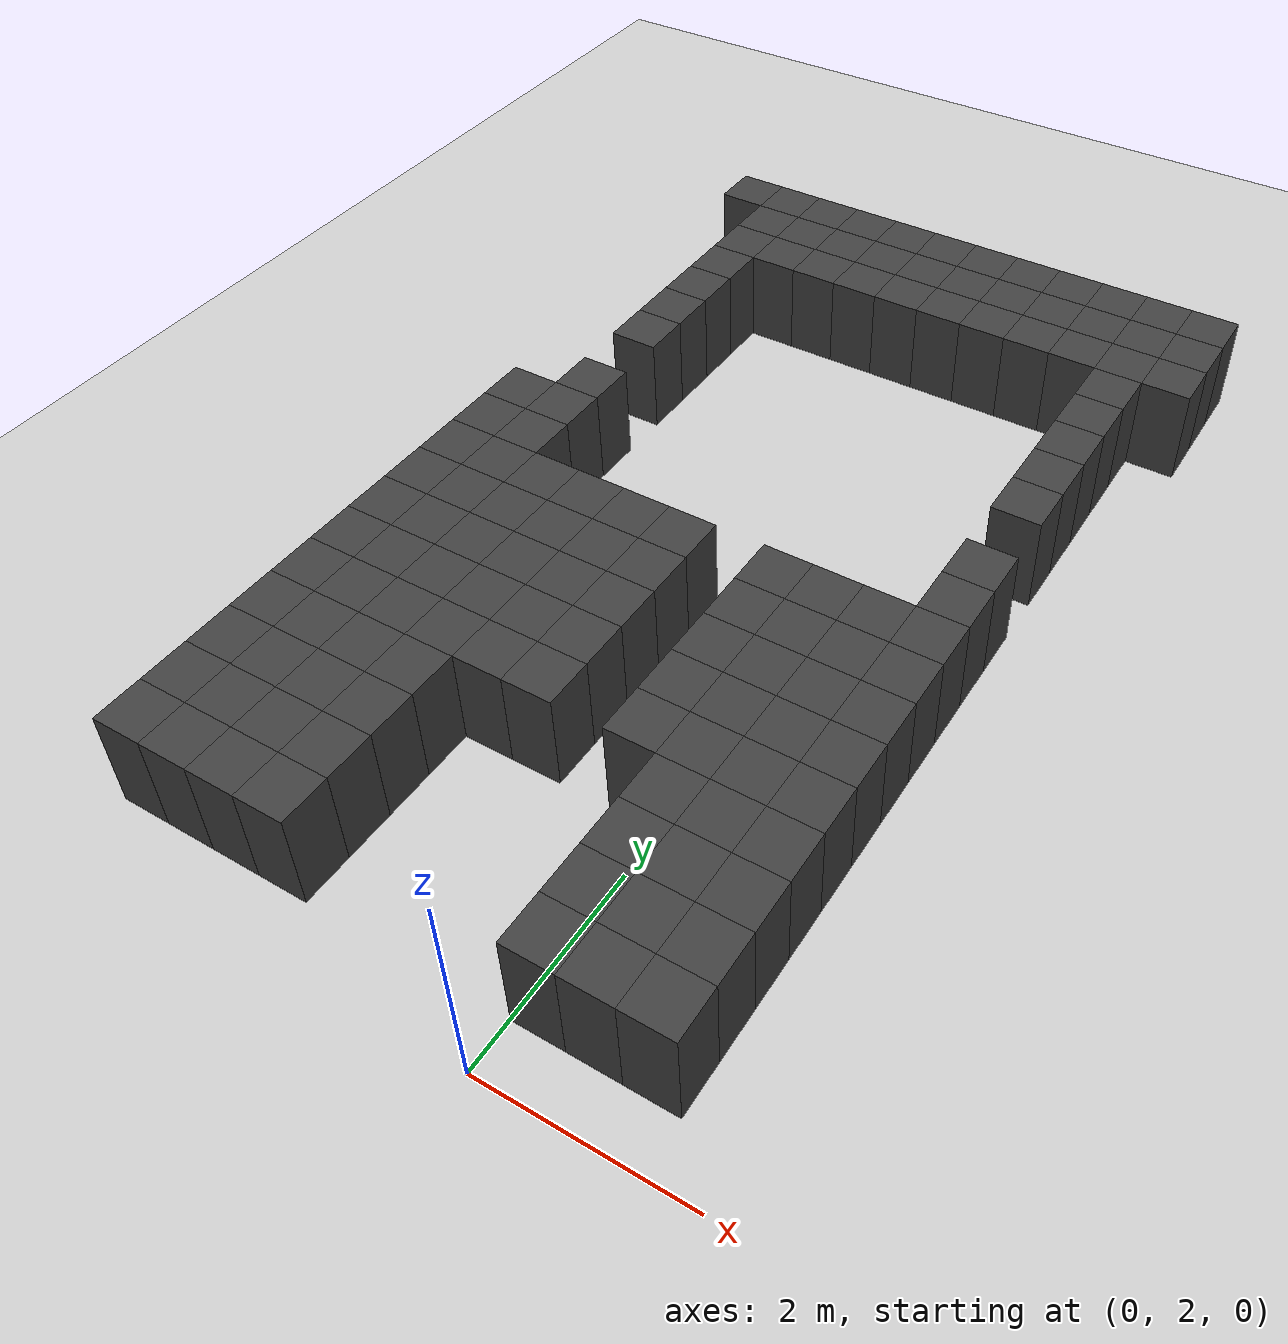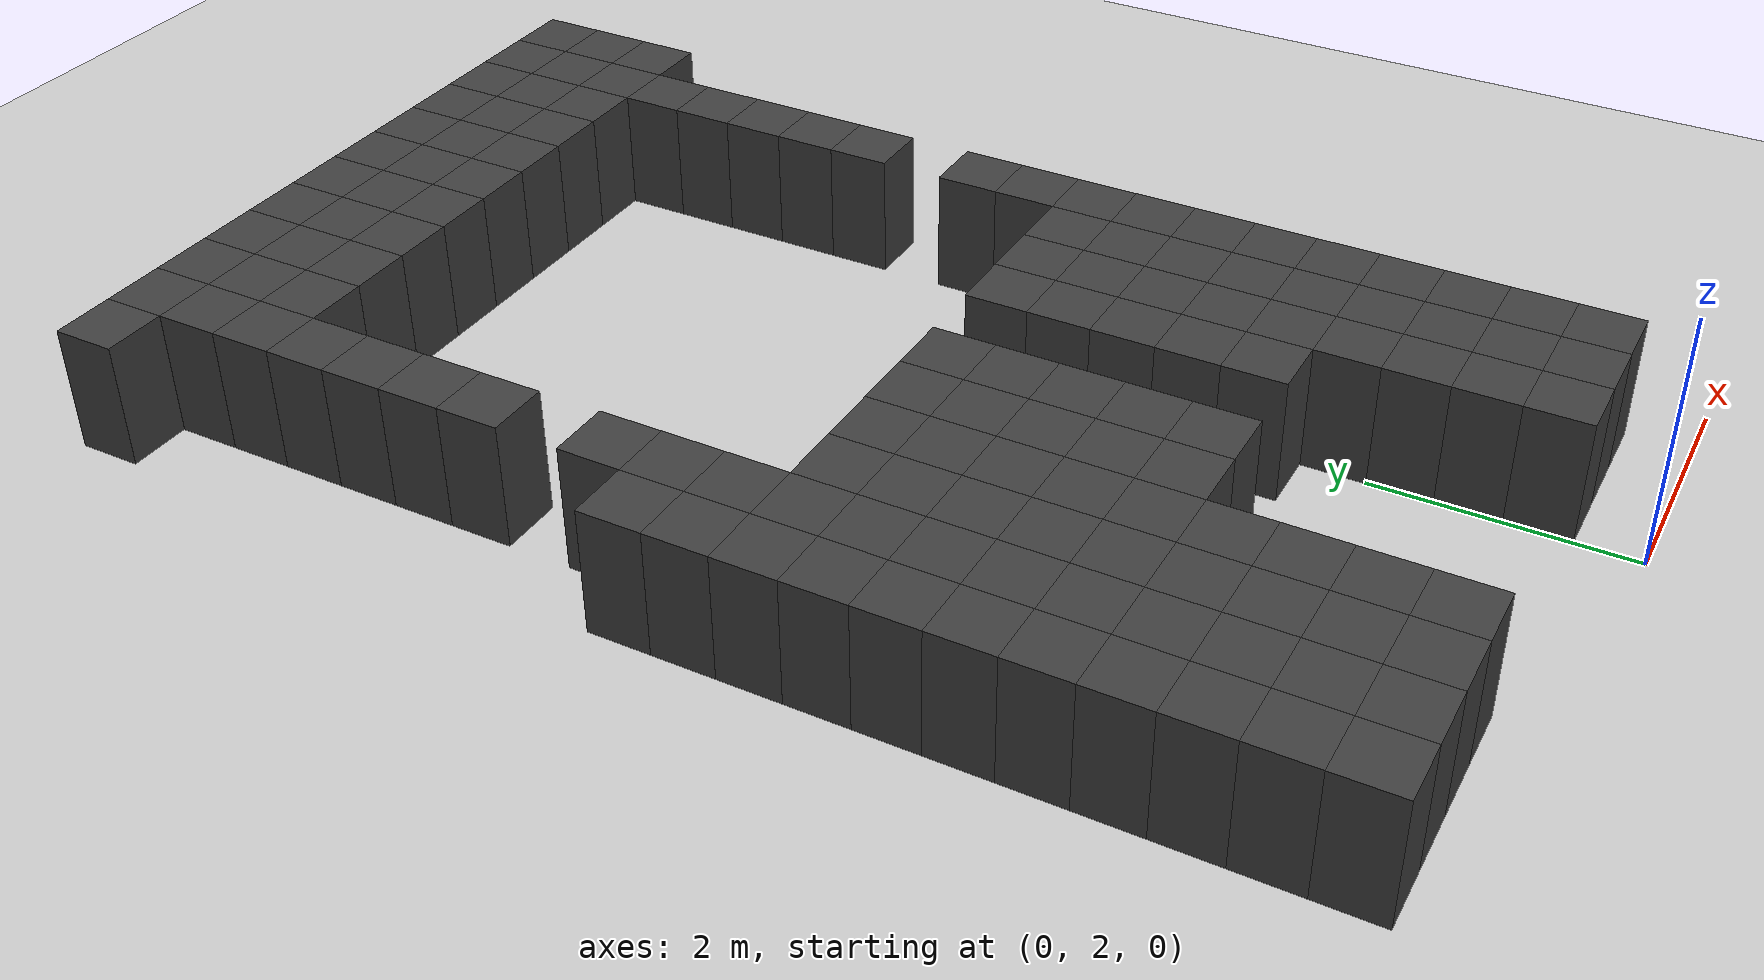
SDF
<sdf version="1.7">
 <world name="map_14735">
  <model name="ground_plane">
   <static>true</static>
   <link name="link">
    <collision name="collision">
     <geometry><plane><normal>0 0 1</normal><size>200 200</size></plane></geometry>
    </collision>
    <visual name="visual">
     <geometry><plane><normal>0 0 1</normal><size>200 200</size></plane></geometry>
     <material><ambient>0.8 0.8 0.8 1</ambient><diffuse>0.8 0.8 0.8 1</diffuse></material>
    </visual>
   </link>
  </model>
  <model name="maze_environment">
   <static>true</static>
   <link name="wall_17">
    <pose>-3.750 12.250 0.500 0 0 0</pose>
    <collision name="col"><geometry><box><size>0.5 0.5 1.0</size></box></geometry></collision>
    <visual name="vis">
     <geometry><box><size>0.5 0.5 1.0</size></box></geometry>
     <material><ambient>0.15 0.15 0.15 1</ambient><diffuse>0.25 0.25 0.25 1</diffuse></material>
    </visual>
   </link>
   <link name="wall_18">
    <pose>-3.250 12.250 0.500 0 0 0</pose>
    <collision name="col"><geometry><box><size>0.5 0.5 1.0</size></box></geometry></collision>
    <visual name="vis">
     <geometry><box><size>0.5 0.5 1.0</size></box></geometry>
     <material><ambient>0.15 0.15 0.15 1</ambient><diffuse>0.25 0.25 0.25 1</diffuse></material>
    </visual>
   </link>
   <link name="wall_19">
    <pose>-2.750 12.250 0.500 0 0 0</pose>
    <collision name="col"><geometry><box><size>0.5 0.5 1.0</size></box></geometry></collision>
    <visual name="vis">
     <geometry><box><size>0.5 0.5 1.0</size></box></geometry>
     <material><ambient>0.15 0.15 0.15 1</ambient><diffuse>0.25 0.25 0.25 1</diffuse></material>
    </visual>
   </link>
   <link name="wall_20">
    <pose>-2.250 12.250 0.500 0 0 0</pose>
    <collision name="col"><geometry><box><size>0.5 0.5 1.0</size></box></geometry></collision>
    <visual name="vis">
     <geometry><box><size>0.5 0.5 1.0</size></box></geometry>
     <material><ambient>0.15 0.15 0.15 1</ambient><diffuse>0.25 0.25 0.25 1</diffuse></material>
    </visual>
   </link>
   <link name="wall_21">
    <pose>-1.750 12.250 0.500 0 0 0</pose>
    <collision name="col"><geometry><box><size>0.5 0.5 1.0</size></box></geometry></collision>
    <visual name="vis">
     <geometry><box><size>0.5 0.5 1.0</size></box></geometry>
     <material><ambient>0.15 0.15 0.15 1</ambient><diffuse>0.25 0.25 0.25 1</diffuse></material>
    </visual>
   </link>
   <link name="wall_22">
    <pose>-1.250 12.250 0.500 0 0 0</pose>
    <collision name="col"><geometry><box><size>0.5 0.5 1.0</size></box></geometry></collision>
    <visual name="vis">
     <geometry><box><size>0.5 0.5 1.0</size></box></geometry>
     <material><ambient>0.15 0.15 0.15 1</ambient><diffuse>0.25 0.25 0.25 1</diffuse></material>
    </visual>
   </link>
   <link name="wall_23">
    <pose>-0.750 12.250 0.500 0 0 0</pose>
    <collision name="col"><geometry><box><size>0.5 0.5 1.0</size></box></geometry></collision>
    <visual name="vis">
     <geometry><box><size>0.5 0.5 1.0</size></box></geometry>
     <material><ambient>0.15 0.15 0.15 1</ambient><diffuse>0.25 0.25 0.25 1</diffuse></material>
    </visual>
   </link>
   <link name="wall_24">
    <pose>-0.250 12.250 0.500 0 0 0</pose>
    <collision name="col"><geometry><box><size>0.5 0.5 1.0</size></box></geometry></collision>
    <visual name="vis">
     <geometry><box><size>0.5 0.5 1.0</size></box></geometry>
     <material><ambient>0.15 0.15 0.15 1</ambient><diffuse>0.25 0.25 0.25 1</diffuse></material>
    </visual>
   </link>
   <link name="wall_25">
    <pose>0.250 12.250 0.500 0 0 0</pose>
    <collision name="col"><geometry><box><size>0.5 0.5 1.0</size></box></geometry></collision>
    <visual name="vis">
     <geometry><box><size>0.5 0.5 1.0</size></box></geometry>
     <material><ambient>0.15 0.15 0.15 1</ambient><diffuse>0.25 0.25 0.25 1</diffuse></material>
    </visual>
   </link>
   <link name="wall_26">
    <pose>0.750 12.250 0.500 0 0 0</pose>
    <collision name="col"><geometry><box><size>0.5 0.5 1.0</size></box></geometry></collision>
    <visual name="vis">
     <geometry><box><size>0.5 0.5 1.0</size></box></geometry>
     <material><ambient>0.15 0.15 0.15 1</ambient><diffuse>0.25 0.25 0.25 1</diffuse></material>
    </visual>
   </link>
   <link name="wall_27">
    <pose>1.250 12.250 0.500 0 0 0</pose>
    <collision name="col"><geometry><box><size>0.5 0.5 1.0</size></box></geometry></collision>
    <visual name="vis">
     <geometry><box><size>0.5 0.5 1.0</size></box></geometry>
     <material><ambient>0.15 0.15 0.15 1</ambient><diffuse>0.25 0.25 0.25 1</diffuse></material>
    </visual>
   </link>
   <link name="wall_28">
    <pose>1.750 12.250 0.500 0 0 0</pose>
    <collision name="col"><geometry><box><size>0.5 0.5 1.0</size></box></geometry></collision>
    <visual name="vis">
     <geometry><box><size>0.5 0.5 1.0</size></box></geometry>
     <material><ambient>0.15 0.15 0.15 1</ambient><diffuse>0.25 0.25 0.25 1</diffuse></material>
    </visual>
   </link>
   <link name="wall_60">
    <pose>-3.250 11.750 0.500 0 0 0</pose>
    <collision name="col"><geometry><box><size>0.5 0.5 1.0</size></box></geometry></collision>
    <visual name="vis">
     <geometry><box><size>0.5 0.5 1.0</size></box></geometry>
     <material><ambient>0.15 0.15 0.15 1</ambient><diffuse>0.25 0.25 0.25 1</diffuse></material>
    </visual>
   </link>
   <link name="wall_61">
    <pose>-2.750 11.750 0.500 0 0 0</pose>
    <collision name="col"><geometry><box><size>0.5 0.5 1.0</size></box></geometry></collision>
    <visual name="vis">
     <geometry><box><size>0.5 0.5 1.0</size></box></geometry>
     <material><ambient>0.15 0.15 0.15 1</ambient><diffuse>0.25 0.25 0.25 1</diffuse></material>
    </visual>
   </link>
   <link name="wall_62">
    <pose>-2.250 11.750 0.500 0 0 0</pose>
    <collision name="col"><geometry><box><size>0.5 0.5 1.0</size></box></geometry></collision>
    <visual name="vis">
     <geometry><box><size>0.5 0.5 1.0</size></box></geometry>
     <material><ambient>0.15 0.15 0.15 1</ambient><diffuse>0.25 0.25 0.25 1</diffuse></material>
    </visual>
   </link>
   <link name="wall_63">
    <pose>-1.750 11.750 0.500 0 0 0</pose>
    <collision name="col"><geometry><box><size>0.5 0.5 1.0</size></box></geometry></collision>
    <visual name="vis">
     <geometry><box><size>0.5 0.5 1.0</size></box></geometry>
     <material><ambient>0.15 0.15 0.15 1</ambient><diffuse>0.25 0.25 0.25 1</diffuse></material>
    </visual>
   </link>
   <link name="wall_64">
    <pose>-1.250 11.750 0.500 0 0 0</pose>
    <collision name="col"><geometry><box><size>0.5 0.5 1.0</size></box></geometry></collision>
    <visual name="vis">
     <geometry><box><size>0.5 0.5 1.0</size></box></geometry>
     <material><ambient>0.15 0.15 0.15 1</ambient><diffuse>0.25 0.25 0.25 1</diffuse></material>
    </visual>
   </link>
   <link name="wall_65">
    <pose>-0.750 11.750 0.500 0 0 0</pose>
    <collision name="col"><geometry><box><size>0.5 0.5 1.0</size></box></geometry></collision>
    <visual name="vis">
     <geometry><box><size>0.5 0.5 1.0</size></box></geometry>
     <material><ambient>0.15 0.15 0.15 1</ambient><diffuse>0.25 0.25 0.25 1</diffuse></material>
    </visual>
   </link>
   <link name="wall_66">
    <pose>-0.250 11.750 0.500 0 0 0</pose>
    <collision name="col"><geometry><box><size>0.5 0.5 1.0</size></box></geometry></collision>
    <visual name="vis">
     <geometry><box><size>0.5 0.5 1.0</size></box></geometry>
     <material><ambient>0.15 0.15 0.15 1</ambient><diffuse>0.25 0.25 0.25 1</diffuse></material>
    </visual>
   </link>
   <link name="wall_67">
    <pose>0.250 11.750 0.500 0 0 0</pose>
    <collision name="col"><geometry><box><size>0.5 0.5 1.0</size></box></geometry></collision>
    <visual name="vis">
     <geometry><box><size>0.5 0.5 1.0</size></box></geometry>
     <material><ambient>0.15 0.15 0.15 1</ambient><diffuse>0.25 0.25 0.25 1</diffuse></material>
    </visual>
   </link>
   <link name="wall_68">
    <pose>0.750 11.750 0.500 0 0 0</pose>
    <collision name="col"><geometry><box><size>0.5 0.5 1.0</size></box></geometry></collision>
    <visual name="vis">
     <geometry><box><size>0.5 0.5 1.0</size></box></geometry>
     <material><ambient>0.15 0.15 0.15 1</ambient><diffuse>0.25 0.25 0.25 1</diffuse></material>
    </visual>
   </link>
   <link name="wall_69">
    <pose>1.250 11.750 0.500 0 0 0</pose>
    <collision name="col"><geometry><box><size>0.5 0.5 1.0</size></box></geometry></collision>
    <visual name="vis">
     <geometry><box><size>0.5 0.5 1.0</size></box></geometry>
     <material><ambient>0.15 0.15 0.15 1</ambient><diffuse>0.25 0.25 0.25 1</diffuse></material>
    </visual>
   </link>
   <link name="wall_70">
    <pose>1.750 11.750 0.500 0 0 0</pose>
    <collision name="col"><geometry><box><size>0.5 0.5 1.0</size></box></geometry></collision>
    <visual name="vis">
     <geometry><box><size>0.5 0.5 1.0</size></box></geometry>
     <material><ambient>0.15 0.15 0.15 1</ambient><diffuse>0.25 0.25 0.25 1</diffuse></material>
    </visual>
   </link>
   <link name="wall_102">
    <pose>-3.250 11.250 0.500 0 0 0</pose>
    <collision name="col"><geometry><box><size>0.5 0.5 1.0</size></box></geometry></collision>
    <visual name="vis">
     <geometry><box><size>0.5 0.5 1.0</size></box></geometry>
     <material><ambient>0.15 0.15 0.15 1</ambient><diffuse>0.25 0.25 0.25 1</diffuse></material>
    </visual>
   </link>
   <link name="wall_103">
    <pose>-2.750 11.250 0.500 0 0 0</pose>
    <collision name="col"><geometry><box><size>0.5 0.5 1.0</size></box></geometry></collision>
    <visual name="vis">
     <geometry><box><size>0.5 0.5 1.0</size></box></geometry>
     <material><ambient>0.15 0.15 0.15 1</ambient><diffuse>0.25 0.25 0.25 1</diffuse></material>
    </visual>
   </link>
   <link name="wall_104">
    <pose>-2.250 11.250 0.500 0 0 0</pose>
    <collision name="col"><geometry><box><size>0.5 0.5 1.0</size></box></geometry></collision>
    <visual name="vis">
     <geometry><box><size>0.5 0.5 1.0</size></box></geometry>
     <material><ambient>0.15 0.15 0.15 1</ambient><diffuse>0.25 0.25 0.25 1</diffuse></material>
    </visual>
   </link>
   <link name="wall_105">
    <pose>-1.750 11.250 0.500 0 0 0</pose>
    <collision name="col"><geometry><box><size>0.5 0.5 1.0</size></box></geometry></collision>
    <visual name="vis">
     <geometry><box><size>0.5 0.5 1.0</size></box></geometry>
     <material><ambient>0.15 0.15 0.15 1</ambient><diffuse>0.25 0.25 0.25 1</diffuse></material>
    </visual>
   </link>
   <link name="wall_106">
    <pose>-1.250 11.250 0.500 0 0 0</pose>
    <collision name="col"><geometry><box><size>0.5 0.5 1.0</size></box></geometry></collision>
    <visual name="vis">
     <geometry><box><size>0.5 0.5 1.0</size></box></geometry>
     <material><ambient>0.15 0.15 0.15 1</ambient><diffuse>0.25 0.25 0.25 1</diffuse></material>
    </visual>
   </link>
   <link name="wall_107">
    <pose>-0.750 11.250 0.500 0 0 0</pose>
    <collision name="col"><geometry><box><size>0.5 0.5 1.0</size></box></geometry></collision>
    <visual name="vis">
     <geometry><box><size>0.5 0.5 1.0</size></box></geometry>
     <material><ambient>0.15 0.15 0.15 1</ambient><diffuse>0.25 0.25 0.25 1</diffuse></material>
    </visual>
   </link>
   <link name="wall_108">
    <pose>-0.250 11.250 0.500 0 0 0</pose>
    <collision name="col"><geometry><box><size>0.5 0.5 1.0</size></box></geometry></collision>
    <visual name="vis">
     <geometry><box><size>0.5 0.5 1.0</size></box></geometry>
     <material><ambient>0.15 0.15 0.15 1</ambient><diffuse>0.25 0.25 0.25 1</diffuse></material>
    </visual>
   </link>
   <link name="wall_109">
    <pose>0.250 11.250 0.500 0 0 0</pose>
    <collision name="col"><geometry><box><size>0.5 0.5 1.0</size></box></geometry></collision>
    <visual name="vis">
     <geometry><box><size>0.5 0.5 1.0</size></box></geometry>
     <material><ambient>0.15 0.15 0.15 1</ambient><diffuse>0.25 0.25 0.25 1</diffuse></material>
    </visual>
   </link>
   <link name="wall_110">
    <pose>0.750 11.250 0.500 0 0 0</pose>
    <collision name="col"><geometry><box><size>0.5 0.5 1.0</size></box></geometry></collision>
    <visual name="vis">
     <geometry><box><size>0.5 0.5 1.0</size></box></geometry>
     <material><ambient>0.15 0.15 0.15 1</ambient><diffuse>0.25 0.25 0.25 1</diffuse></material>
    </visual>
   </link>
   <link name="wall_111">
    <pose>1.250 11.250 0.500 0 0 0</pose>
    <collision name="col"><geometry><box><size>0.5 0.5 1.0</size></box></geometry></collision>
    <visual name="vis">
     <geometry><box><size>0.5 0.5 1.0</size></box></geometry>
     <material><ambient>0.15 0.15 0.15 1</ambient><diffuse>0.25 0.25 0.25 1</diffuse></material>
    </visual>
   </link>
   <link name="wall_112">
    <pose>1.750 11.250 0.500 0 0 0</pose>
    <collision name="col"><geometry><box><size>0.5 0.5 1.0</size></box></geometry></collision>
    <visual name="vis">
     <geometry><box><size>0.5 0.5 1.0</size></box></geometry>
     <material><ambient>0.15 0.15 0.15 1</ambient><diffuse>0.25 0.25 0.25 1</diffuse></material>
    </visual>
   </link>
   <link name="wall_144">
    <pose>-3.250 10.750 0.500 0 0 0</pose>
    <collision name="col"><geometry><box><size>0.5 0.5 1.0</size></box></geometry></collision>
    <visual name="vis">
     <geometry><box><size>0.5 0.5 1.0</size></box></geometry>
     <material><ambient>0.15 0.15 0.15 1</ambient><diffuse>0.25 0.25 0.25 1</diffuse></material>
    </visual>
   </link>
   <link name="wall_145">
    <pose>1.250 10.750 0.500 0 0 0</pose>
    <collision name="col"><geometry><box><size>0.5 0.5 1.0</size></box></geometry></collision>
    <visual name="vis">
     <geometry><box><size>0.5 0.5 1.0</size></box></geometry>
     <material><ambient>0.15 0.15 0.15 1</ambient><diffuse>0.25 0.25 0.25 1</diffuse></material>
    </visual>
   </link>
   <link name="wall_173">
    <pose>-3.250 10.250 0.500 0 0 0</pose>
    <collision name="col"><geometry><box><size>0.5 0.5 1.0</size></box></geometry></collision>
    <visual name="vis">
     <geometry><box><size>0.5 0.5 1.0</size></box></geometry>
     <material><ambient>0.15 0.15 0.15 1</ambient><diffuse>0.25 0.25 0.25 1</diffuse></material>
    </visual>
   </link>
   <link name="wall_174">
    <pose>1.250 10.250 0.500 0 0 0</pose>
    <collision name="col"><geometry><box><size>0.5 0.5 1.0</size></box></geometry></collision>
    <visual name="vis">
     <geometry><box><size>0.5 0.5 1.0</size></box></geometry>
     <material><ambient>0.15 0.15 0.15 1</ambient><diffuse>0.25 0.25 0.25 1</diffuse></material>
    </visual>
   </link>
   <link name="wall_201">
    <pose>-3.250 9.750 0.500 0 0 0</pose>
    <collision name="col"><geometry><box><size>0.5 0.5 1.0</size></box></geometry></collision>
    <visual name="vis">
     <geometry><box><size>0.5 0.5 1.0</size></box></geometry>
     <material><ambient>0.15 0.15 0.15 1</ambient><diffuse>0.25 0.25 0.25 1</diffuse></material>
    </visual>
   </link>
   <link name="wall_202">
    <pose>1.250 9.750 0.500 0 0 0</pose>
    <collision name="col"><geometry><box><size>0.5 0.5 1.0</size></box></geometry></collision>
    <visual name="vis">
     <geometry><box><size>0.5 0.5 1.0</size></box></geometry>
     <material><ambient>0.15 0.15 0.15 1</ambient><diffuse>0.25 0.25 0.25 1</diffuse></material>
    </visual>
   </link>
   <link name="wall_222">
    <pose>-3.250 9.250 0.500 0 0 0</pose>
    <collision name="col"><geometry><box><size>0.5 0.5 1.0</size></box></geometry></collision>
    <visual name="vis">
     <geometry><box><size>0.5 0.5 1.0</size></box></geometry>
     <material><ambient>0.15 0.15 0.15 1</ambient><diffuse>0.25 0.25 0.25 1</diffuse></material>
    </visual>
   </link>
   <link name="wall_223">
    <pose>1.250 9.250 0.500 0 0 0</pose>
    <collision name="col"><geometry><box><size>0.5 0.5 1.0</size></box></geometry></collision>
    <visual name="vis">
     <geometry><box><size>0.5 0.5 1.0</size></box></geometry>
     <material><ambient>0.15 0.15 0.15 1</ambient><diffuse>0.25 0.25 0.25 1</diffuse></material>
    </visual>
   </link>
   <link name="wall_245">
    <pose>1.250 8.750 0.500 0 0 0</pose>
    <collision name="col"><geometry><box><size>0.5 0.5 1.0</size></box></geometry></collision>
    <visual name="vis">
     <geometry><box><size>0.5 0.5 1.0</size></box></geometry>
     <material><ambient>0.15 0.15 0.15 1</ambient><diffuse>0.25 0.25 0.25 1</diffuse></material>
    </visual>
   </link>
   <link name="wall_270">
    <pose>-3.250 8.250 0.500 0 0 0</pose>
    <collision name="col"><geometry><box><size>0.5 0.5 1.0</size></box></geometry></collision>
    <visual name="vis">
     <geometry><box><size>0.5 0.5 1.0</size></box></geometry>
     <material><ambient>0.15 0.15 0.15 1</ambient><diffuse>0.25 0.25 0.25 1</diffuse></material>
    </visual>
   </link>
   <link name="wall_285">
    <pose>-3.750 7.750 0.500 0 0 0</pose>
    <collision name="col"><geometry><box><size>0.5 0.5 1.0</size></box></geometry></collision>
    <visual name="vis">
     <geometry><box><size>0.5 0.5 1.0</size></box></geometry>
     <material><ambient>0.15 0.15 0.15 1</ambient><diffuse>0.25 0.25 0.25 1</diffuse></material>
    </visual>
   </link>
   <link name="wall_286">
    <pose>-3.250 7.750 0.500 0 0 0</pose>
    <collision name="col"><geometry><box><size>0.5 0.5 1.0</size></box></geometry></collision>
    <visual name="vis">
     <geometry><box><size>0.5 0.5 1.0</size></box></geometry>
     <material><ambient>0.15 0.15 0.15 1</ambient><diffuse>0.25 0.25 0.25 1</diffuse></material>
    </visual>
   </link>
   <link name="wall_287">
    <pose>1.250 7.750 0.500 0 0 0</pose>
    <collision name="col"><geometry><box><size>0.5 0.5 1.0</size></box></geometry></collision>
    <visual name="vis">
     <geometry><box><size>0.5 0.5 1.0</size></box></geometry>
     <material><ambient>0.15 0.15 0.15 1</ambient><diffuse>0.25 0.25 0.25 1</diffuse></material>
    </visual>
   </link>
   <link name="wall_307">
    <pose>-3.750 7.250 0.500 0 0 0</pose>
    <collision name="col"><geometry><box><size>0.5 0.5 1.0</size></box></geometry></collision>
    <visual name="vis">
     <geometry><box><size>0.5 0.5 1.0</size></box></geometry>
     <material><ambient>0.15 0.15 0.15 1</ambient><diffuse>0.25 0.25 0.25 1</diffuse></material>
    </visual>
   </link>
   <link name="wall_308">
    <pose>-3.250 7.250 0.500 0 0 0</pose>
    <collision name="col"><geometry><box><size>0.5 0.5 1.0</size></box></geometry></collision>
    <visual name="vis">
     <geometry><box><size>0.5 0.5 1.0</size></box></geometry>
     <material><ambient>0.15 0.15 0.15 1</ambient><diffuse>0.25 0.25 0.25 1</diffuse></material>
    </visual>
   </link>
   <link name="wall_309">
    <pose>1.250 7.250 0.500 0 0 0</pose>
    <collision name="col"><geometry><box><size>0.5 0.5 1.0</size></box></geometry></collision>
    <visual name="vis">
     <geometry><box><size>0.5 0.5 1.0</size></box></geometry>
     <material><ambient>0.15 0.15 0.15 1</ambient><diffuse>0.25 0.25 0.25 1</diffuse></material>
    </visual>
   </link>
   <link name="wall_329">
    <pose>-3.750 6.750 0.500 0 0 0</pose>
    <collision name="col"><geometry><box><size>0.5 0.5 1.0</size></box></geometry></collision>
    <visual name="vis">
     <geometry><box><size>0.5 0.5 1.0</size></box></geometry>
     <material><ambient>0.15 0.15 0.15 1</ambient><diffuse>0.25 0.25 0.25 1</diffuse></material>
    </visual>
   </link>
   <link name="wall_330">
    <pose>-3.250 6.750 0.500 0 0 0</pose>
    <collision name="col"><geometry><box><size>0.5 0.5 1.0</size></box></geometry></collision>
    <visual name="vis">
     <geometry><box><size>0.5 0.5 1.0</size></box></geometry>
     <material><ambient>0.15 0.15 0.15 1</ambient><diffuse>0.25 0.25 0.25 1</diffuse></material>
    </visual>
   </link>
   <link name="wall_331">
    <pose>-2.750 6.750 0.500 0 0 0</pose>
    <collision name="col"><geometry><box><size>0.5 0.5 1.0</size></box></geometry></collision>
    <visual name="vis">
     <geometry><box><size>0.5 0.5 1.0</size></box></geometry>
     <material><ambient>0.15 0.15 0.15 1</ambient><diffuse>0.25 0.25 0.25 1</diffuse></material>
    </visual>
   </link>
   <link name="wall_332">
    <pose>-2.250 6.750 0.500 0 0 0</pose>
    <collision name="col"><geometry><box><size>0.5 0.5 1.0</size></box></geometry></collision>
    <visual name="vis">
     <geometry><box><size>0.5 0.5 1.0</size></box></geometry>
     <material><ambient>0.15 0.15 0.15 1</ambient><diffuse>0.25 0.25 0.25 1</diffuse></material>
    </visual>
   </link>
   <link name="wall_333">
    <pose>-1.750 6.750 0.500 0 0 0</pose>
    <collision name="col"><geometry><box><size>0.5 0.5 1.0</size></box></geometry></collision>
    <visual name="vis">
     <geometry><box><size>0.5 0.5 1.0</size></box></geometry>
     <material><ambient>0.15 0.15 0.15 1</ambient><diffuse>0.25 0.25 0.25 1</diffuse></material>
    </visual>
   </link>
   <link name="wall_334">
    <pose>-1.250 6.750 0.500 0 0 0</pose>
    <collision name="col"><geometry><box><size>0.5 0.5 1.0</size></box></geometry></collision>
    <visual name="vis">
     <geometry><box><size>0.5 0.5 1.0</size></box></geometry>
     <material><ambient>0.15 0.15 0.15 1</ambient><diffuse>0.25 0.25 0.25 1</diffuse></material>
    </visual>
   </link>
   <link name="wall_335">
    <pose>-0.250 6.750 0.500 0 0 0</pose>
    <collision name="col"><geometry><box><size>0.5 0.5 1.0</size></box></geometry></collision>
    <visual name="vis">
     <geometry><box><size>0.5 0.5 1.0</size></box></geometry>
     <material><ambient>0.15 0.15 0.15 1</ambient><diffuse>0.25 0.25 0.25 1</diffuse></material>
    </visual>
   </link>
   <link name="wall_336">
    <pose>0.250 6.750 0.500 0 0 0</pose>
    <collision name="col"><geometry><box><size>0.5 0.5 1.0</size></box></geometry></collision>
    <visual name="vis">
     <geometry><box><size>0.5 0.5 1.0</size></box></geometry>
     <material><ambient>0.15 0.15 0.15 1</ambient><diffuse>0.25 0.25 0.25 1</diffuse></material>
    </visual>
   </link>
   <link name="wall_337">
    <pose>0.750 6.750 0.500 0 0 0</pose>
    <collision name="col"><geometry><box><size>0.5 0.5 1.0</size></box></geometry></collision>
    <visual name="vis">
     <geometry><box><size>0.5 0.5 1.0</size></box></geometry>
     <material><ambient>0.15 0.15 0.15 1</ambient><diffuse>0.25 0.25 0.25 1</diffuse></material>
    </visual>
   </link>
   <link name="wall_338">
    <pose>1.250 6.750 0.500 0 0 0</pose>
    <collision name="col"><geometry><box><size>0.5 0.5 1.0</size></box></geometry></collision>
    <visual name="vis">
     <geometry><box><size>0.5 0.5 1.0</size></box></geometry>
     <material><ambient>0.15 0.15 0.15 1</ambient><diffuse>0.25 0.25 0.25 1</diffuse></material>
    </visual>
   </link>
   <link name="wall_358">
    <pose>-3.750 6.250 0.500 0 0 0</pose>
    <collision name="col"><geometry><box><size>0.5 0.5 1.0</size></box></geometry></collision>
    <visual name="vis">
     <geometry><box><size>0.5 0.5 1.0</size></box></geometry>
     <material><ambient>0.15 0.15 0.15 1</ambient><diffuse>0.25 0.25 0.25 1</diffuse></material>
    </visual>
   </link>
   <link name="wall_359">
    <pose>-3.250 6.250 0.500 0 0 0</pose>
    <collision name="col"><geometry><box><size>0.5 0.5 1.0</size></box></geometry></collision>
    <visual name="vis">
     <geometry><box><size>0.5 0.5 1.0</size></box></geometry>
     <material><ambient>0.15 0.15 0.15 1</ambient><diffuse>0.25 0.25 0.25 1</diffuse></material>
    </visual>
   </link>
   <link name="wall_360">
    <pose>-2.750 6.250 0.500 0 0 0</pose>
    <collision name="col"><geometry><box><size>0.5 0.5 1.0</size></box></geometry></collision>
    <visual name="vis">
     <geometry><box><size>0.5 0.5 1.0</size></box></geometry>
     <material><ambient>0.15 0.15 0.15 1</ambient><diffuse>0.25 0.25 0.25 1</diffuse></material>
    </visual>
   </link>
   <link name="wall_361">
    <pose>-2.250 6.250 0.500 0 0 0</pose>
    <collision name="col"><geometry><box><size>0.5 0.5 1.0</size></box></geometry></collision>
    <visual name="vis">
     <geometry><box><size>0.5 0.5 1.0</size></box></geometry>
     <material><ambient>0.15 0.15 0.15 1</ambient><diffuse>0.25 0.25 0.25 1</diffuse></material>
    </visual>
   </link>
   <link name="wall_362">
    <pose>-1.750 6.250 0.500 0 0 0</pose>
    <collision name="col"><geometry><box><size>0.5 0.5 1.0</size></box></geometry></collision>
    <visual name="vis">
     <geometry><box><size>0.5 0.5 1.0</size></box></geometry>
     <material><ambient>0.15 0.15 0.15 1</ambient><diffuse>0.25 0.25 0.25 1</diffuse></material>
    </visual>
   </link>
   <link name="wall_363">
    <pose>-1.250 6.250 0.500 0 0 0</pose>
    <collision name="col"><geometry><box><size>0.5 0.5 1.0</size></box></geometry></collision>
    <visual name="vis">
     <geometry><box><size>0.5 0.5 1.0</size></box></geometry>
     <material><ambient>0.15 0.15 0.15 1</ambient><diffuse>0.25 0.25 0.25 1</diffuse></material>
    </visual>
   </link>
   <link name="wall_364">
    <pose>-0.250 6.250 0.500 0 0 0</pose>
    <collision name="col"><geometry><box><size>0.5 0.5 1.0</size></box></geometry></collision>
    <visual name="vis">
     <geometry><box><size>0.5 0.5 1.0</size></box></geometry>
     <material><ambient>0.15 0.15 0.15 1</ambient><diffuse>0.25 0.25 0.25 1</diffuse></material>
    </visual>
   </link>
   <link name="wall_365">
    <pose>0.250 6.250 0.500 0 0 0</pose>
    <collision name="col"><geometry><box><size>0.5 0.5 1.0</size></box></geometry></collision>
    <visual name="vis">
     <geometry><box><size>0.5 0.5 1.0</size></box></geometry>
     <material><ambient>0.15 0.15 0.15 1</ambient><diffuse>0.25 0.25 0.25 1</diffuse></material>
    </visual>
   </link>
   <link name="wall_366">
    <pose>0.750 6.250 0.500 0 0 0</pose>
    <collision name="col"><geometry><box><size>0.5 0.5 1.0</size></box></geometry></collision>
    <visual name="vis">
     <geometry><box><size>0.5 0.5 1.0</size></box></geometry>
     <material><ambient>0.15 0.15 0.15 1</ambient><diffuse>0.25 0.25 0.25 1</diffuse></material>
    </visual>
   </link>
   <link name="wall_367">
    <pose>1.250 6.250 0.500 0 0 0</pose>
    <collision name="col"><geometry><box><size>0.5 0.5 1.0</size></box></geometry></collision>
    <visual name="vis">
     <geometry><box><size>0.5 0.5 1.0</size></box></geometry>
     <material><ambient>0.15 0.15 0.15 1</ambient><diffuse>0.25 0.25 0.25 1</diffuse></material>
    </visual>
   </link>
   <link name="wall_392">
    <pose>-3.750 5.750 0.500 0 0 0</pose>
    <collision name="col"><geometry><box><size>0.5 0.5 1.0</size></box></geometry></collision>
    <visual name="vis">
     <geometry><box><size>0.5 0.5 1.0</size></box></geometry>
     <material><ambient>0.15 0.15 0.15 1</ambient><diffuse>0.25 0.25 0.25 1</diffuse></material>
    </visual>
   </link>
   <link name="wall_393">
    <pose>-3.250 5.750 0.500 0 0 0</pose>
    <collision name="col"><geometry><box><size>0.5 0.5 1.0</size></box></geometry></collision>
    <visual name="vis">
     <geometry><box><size>0.5 0.5 1.0</size></box></geometry>
     <material><ambient>0.15 0.15 0.15 1</ambient><diffuse>0.25 0.25 0.25 1</diffuse></material>
    </visual>
   </link>
   <link name="wall_394">
    <pose>-2.750 5.750 0.500 0 0 0</pose>
    <collision name="col"><geometry><box><size>0.5 0.5 1.0</size></box></geometry></collision>
    <visual name="vis">
     <geometry><box><size>0.5 0.5 1.0</size></box></geometry>
     <material><ambient>0.15 0.15 0.15 1</ambient><diffuse>0.25 0.25 0.25 1</diffuse></material>
    </visual>
   </link>
   <link name="wall_395">
    <pose>-2.250 5.750 0.500 0 0 0</pose>
    <collision name="col"><geometry><box><size>0.5 0.5 1.0</size></box></geometry></collision>
    <visual name="vis">
     <geometry><box><size>0.5 0.5 1.0</size></box></geometry>
     <material><ambient>0.15 0.15 0.15 1</ambient><diffuse>0.25 0.25 0.25 1</diffuse></material>
    </visual>
   </link>
   <link name="wall_396">
    <pose>-1.750 5.750 0.500 0 0 0</pose>
    <collision name="col"><geometry><box><size>0.5 0.5 1.0</size></box></geometry></collision>
    <visual name="vis">
     <geometry><box><size>0.5 0.5 1.0</size></box></geometry>
     <material><ambient>0.15 0.15 0.15 1</ambient><diffuse>0.25 0.25 0.25 1</diffuse></material>
    </visual>
   </link>
   <link name="wall_397">
    <pose>-1.250 5.750 0.500 0 0 0</pose>
    <collision name="col"><geometry><box><size>0.5 0.5 1.0</size></box></geometry></collision>
    <visual name="vis">
     <geometry><box><size>0.5 0.5 1.0</size></box></geometry>
     <material><ambient>0.15 0.15 0.15 1</ambient><diffuse>0.25 0.25 0.25 1</diffuse></material>
    </visual>
   </link>
   <link name="wall_398">
    <pose>-0.250 5.750 0.500 0 0 0</pose>
    <collision name="col"><geometry><box><size>0.5 0.5 1.0</size></box></geometry></collision>
    <visual name="vis">
     <geometry><box><size>0.5 0.5 1.0</size></box></geometry>
     <material><ambient>0.15 0.15 0.15 1</ambient><diffuse>0.25 0.25 0.25 1</diffuse></material>
    </visual>
   </link>
   <link name="wall_399">
    <pose>0.250 5.750 0.500 0 0 0</pose>
    <collision name="col"><geometry><box><size>0.5 0.5 1.0</size></box></geometry></collision>
    <visual name="vis">
     <geometry><box><size>0.5 0.5 1.0</size></box></geometry>
     <material><ambient>0.15 0.15 0.15 1</ambient><diffuse>0.25 0.25 0.25 1</diffuse></material>
    </visual>
   </link>
   <link name="wall_400">
    <pose>0.750 5.750 0.500 0 0 0</pose>
    <collision name="col"><geometry><box><size>0.5 0.5 1.0</size></box></geometry></collision>
    <visual name="vis">
     <geometry><box><size>0.5 0.5 1.0</size></box></geometry>
     <material><ambient>0.15 0.15 0.15 1</ambient><diffuse>0.25 0.25 0.25 1</diffuse></material>
    </visual>
   </link>
   <link name="wall_401">
    <pose>1.250 5.750 0.500 0 0 0</pose>
    <collision name="col"><geometry><box><size>0.5 0.5 1.0</size></box></geometry></collision>
    <visual name="vis">
     <geometry><box><size>0.5 0.5 1.0</size></box></geometry>
     <material><ambient>0.15 0.15 0.15 1</ambient><diffuse>0.25 0.25 0.25 1</diffuse></material>
    </visual>
   </link>
   <link name="wall_429">
    <pose>-3.750 5.250 0.500 0 0 0</pose>
    <collision name="col"><geometry><box><size>0.5 0.5 1.0</size></box></geometry></collision>
    <visual name="vis">
     <geometry><box><size>0.5 0.5 1.0</size></box></geometry>
     <material><ambient>0.15 0.15 0.15 1</ambient><diffuse>0.25 0.25 0.25 1</diffuse></material>
    </visual>
   </link>
   <link name="wall_430">
    <pose>-3.250 5.250 0.500 0 0 0</pose>
    <collision name="col"><geometry><box><size>0.5 0.5 1.0</size></box></geometry></collision>
    <visual name="vis">
     <geometry><box><size>0.5 0.5 1.0</size></box></geometry>
     <material><ambient>0.15 0.15 0.15 1</ambient><diffuse>0.25 0.25 0.25 1</diffuse></material>
    </visual>
   </link>
   <link name="wall_431">
    <pose>-2.750 5.250 0.500 0 0 0</pose>
    <collision name="col"><geometry><box><size>0.5 0.5 1.0</size></box></geometry></collision>
    <visual name="vis">
     <geometry><box><size>0.5 0.5 1.0</size></box></geometry>
     <material><ambient>0.15 0.15 0.15 1</ambient><diffuse>0.25 0.25 0.25 1</diffuse></material>
    </visual>
   </link>
   <link name="wall_432">
    <pose>-2.250 5.250 0.500 0 0 0</pose>
    <collision name="col"><geometry><box><size>0.5 0.5 1.0</size></box></geometry></collision>
    <visual name="vis">
     <geometry><box><size>0.5 0.5 1.0</size></box></geometry>
     <material><ambient>0.15 0.15 0.15 1</ambient><diffuse>0.25 0.25 0.25 1</diffuse></material>
    </visual>
   </link>
   <link name="wall_433">
    <pose>-1.750 5.250 0.500 0 0 0</pose>
    <collision name="col"><geometry><box><size>0.5 0.5 1.0</size></box></geometry></collision>
    <visual name="vis">
     <geometry><box><size>0.5 0.5 1.0</size></box></geometry>
     <material><ambient>0.15 0.15 0.15 1</ambient><diffuse>0.25 0.25 0.25 1</diffuse></material>
    </visual>
   </link>
   <link name="wall_434">
    <pose>-1.250 5.250 0.500 0 0 0</pose>
    <collision name="col"><geometry><box><size>0.5 0.5 1.0</size></box></geometry></collision>
    <visual name="vis">
     <geometry><box><size>0.5 0.5 1.0</size></box></geometry>
     <material><ambient>0.15 0.15 0.15 1</ambient><diffuse>0.25 0.25 0.25 1</diffuse></material>
    </visual>
   </link>
   <link name="wall_435">
    <pose>-0.250 5.250 0.500 0 0 0</pose>
    <collision name="col"><geometry><box><size>0.5 0.5 1.0</size></box></geometry></collision>
    <visual name="vis">
     <geometry><box><size>0.5 0.5 1.0</size></box></geometry>
     <material><ambient>0.15 0.15 0.15 1</ambient><diffuse>0.25 0.25 0.25 1</diffuse></material>
    </visual>
   </link>
   <link name="wall_436">
    <pose>0.250 5.250 0.500 0 0 0</pose>
    <collision name="col"><geometry><box><size>0.5 0.5 1.0</size></box></geometry></collision>
    <visual name="vis">
     <geometry><box><size>0.5 0.5 1.0</size></box></geometry>
     <material><ambient>0.15 0.15 0.15 1</ambient><diffuse>0.25 0.25 0.25 1</diffuse></material>
    </visual>
   </link>
   <link name="wall_437">
    <pose>0.750 5.250 0.500 0 0 0</pose>
    <collision name="col"><geometry><box><size>0.5 0.5 1.0</size></box></geometry></collision>
    <visual name="vis">
     <geometry><box><size>0.5 0.5 1.0</size></box></geometry>
     <material><ambient>0.15 0.15 0.15 1</ambient><diffuse>0.25 0.25 0.25 1</diffuse></material>
    </visual>
   </link>
   <link name="wall_438">
    <pose>1.250 5.250 0.500 0 0 0</pose>
    <collision name="col"><geometry><box><size>0.5 0.5 1.0</size></box></geometry></collision>
    <visual name="vis">
     <geometry><box><size>0.5 0.5 1.0</size></box></geometry>
     <material><ambient>0.15 0.15 0.15 1</ambient><diffuse>0.25 0.25 0.25 1</diffuse></material>
    </visual>
   </link>
   <link name="wall_469">
    <pose>-3.750 4.750 0.500 0 0 0</pose>
    <collision name="col"><geometry><box><size>0.5 0.5 1.0</size></box></geometry></collision>
    <visual name="vis">
     <geometry><box><size>0.5 0.5 1.0</size></box></geometry>
     <material><ambient>0.15 0.15 0.15 1</ambient><diffuse>0.25 0.25 0.25 1</diffuse></material>
    </visual>
   </link>
   <link name="wall_470">
    <pose>-3.250 4.750 0.500 0 0 0</pose>
    <collision name="col"><geometry><box><size>0.5 0.5 1.0</size></box></geometry></collision>
    <visual name="vis">
     <geometry><box><size>0.5 0.5 1.0</size></box></geometry>
     <material><ambient>0.15 0.15 0.15 1</ambient><diffuse>0.25 0.25 0.25 1</diffuse></material>
    </visual>
   </link>
   <link name="wall_471">
    <pose>-2.750 4.750 0.500 0 0 0</pose>
    <collision name="col"><geometry><box><size>0.5 0.5 1.0</size></box></geometry></collision>
    <visual name="vis">
     <geometry><box><size>0.5 0.5 1.0</size></box></geometry>
     <material><ambient>0.15 0.15 0.15 1</ambient><diffuse>0.25 0.25 0.25 1</diffuse></material>
    </visual>
   </link>
   <link name="wall_472">
    <pose>-2.250 4.750 0.500 0 0 0</pose>
    <collision name="col"><geometry><box><size>0.5 0.5 1.0</size></box></geometry></collision>
    <visual name="vis">
     <geometry><box><size>0.5 0.5 1.0</size></box></geometry>
     <material><ambient>0.15 0.15 0.15 1</ambient><diffuse>0.25 0.25 0.25 1</diffuse></material>
    </visual>
   </link>
   <link name="wall_473">
    <pose>-1.750 4.750 0.500 0 0 0</pose>
    <collision name="col"><geometry><box><size>0.5 0.5 1.0</size></box></geometry></collision>
    <visual name="vis">
     <geometry><box><size>0.5 0.5 1.0</size></box></geometry>
     <material><ambient>0.15 0.15 0.15 1</ambient><diffuse>0.25 0.25 0.25 1</diffuse></material>
    </visual>
   </link>
   <link name="wall_474">
    <pose>-1.250 4.750 0.500 0 0 0</pose>
    <collision name="col"><geometry><box><size>0.5 0.5 1.0</size></box></geometry></collision>
    <visual name="vis">
     <geometry><box><size>0.5 0.5 1.0</size></box></geometry>
     <material><ambient>0.15 0.15 0.15 1</ambient><diffuse>0.25 0.25 0.25 1</diffuse></material>
    </visual>
   </link>
   <link name="wall_475">
    <pose>-0.250 4.750 0.500 0 0 0</pose>
    <collision name="col"><geometry><box><size>0.5 0.5 1.0</size></box></geometry></collision>
    <visual name="vis">
     <geometry><box><size>0.5 0.5 1.0</size></box></geometry>
     <material><ambient>0.15 0.15 0.15 1</ambient><diffuse>0.25 0.25 0.25 1</diffuse></material>
    </visual>
   </link>
   <link name="wall_476">
    <pose>0.250 4.750 0.500 0 0 0</pose>
    <collision name="col"><geometry><box><size>0.5 0.5 1.0</size></box></geometry></collision>
    <visual name="vis">
     <geometry><box><size>0.5 0.5 1.0</size></box></geometry>
     <material><ambient>0.15 0.15 0.15 1</ambient><diffuse>0.25 0.25 0.25 1</diffuse></material>
    </visual>
   </link>
   <link name="wall_477">
    <pose>0.750 4.750 0.500 0 0 0</pose>
    <collision name="col"><geometry><box><size>0.5 0.5 1.0</size></box></geometry></collision>
    <visual name="vis">
     <geometry><box><size>0.5 0.5 1.0</size></box></geometry>
     <material><ambient>0.15 0.15 0.15 1</ambient><diffuse>0.25 0.25 0.25 1</diffuse></material>
    </visual>
   </link>
   <link name="wall_478">
    <pose>1.250 4.750 0.500 0 0 0</pose>
    <collision name="col"><geometry><box><size>0.5 0.5 1.0</size></box></geometry></collision>
    <visual name="vis">
     <geometry><box><size>0.5 0.5 1.0</size></box></geometry>
     <material><ambient>0.15 0.15 0.15 1</ambient><diffuse>0.25 0.25 0.25 1</diffuse></material>
    </visual>
   </link>
   <link name="wall_509">
    <pose>-3.750 4.250 0.500 0 0 0</pose>
    <collision name="col"><geometry><box><size>0.5 0.5 1.0</size></box></geometry></collision>
    <visual name="vis">
     <geometry><box><size>0.5 0.5 1.0</size></box></geometry>
     <material><ambient>0.15 0.15 0.15 1</ambient><diffuse>0.25 0.25 0.25 1</diffuse></material>
    </visual>
   </link>
   <link name="wall_510">
    <pose>-3.250 4.250 0.500 0 0 0</pose>
    <collision name="col"><geometry><box><size>0.5 0.5 1.0</size></box></geometry></collision>
    <visual name="vis">
     <geometry><box><size>0.5 0.5 1.0</size></box></geometry>
     <material><ambient>0.15 0.15 0.15 1</ambient><diffuse>0.25 0.25 0.25 1</diffuse></material>
    </visual>
   </link>
   <link name="wall_511">
    <pose>-2.750 4.250 0.500 0 0 0</pose>
    <collision name="col"><geometry><box><size>0.5 0.5 1.0</size></box></geometry></collision>
    <visual name="vis">
     <geometry><box><size>0.5 0.5 1.0</size></box></geometry>
     <material><ambient>0.15 0.15 0.15 1</ambient><diffuse>0.25 0.25 0.25 1</diffuse></material>
    </visual>
   </link>
   <link name="wall_512">
    <pose>-2.250 4.250 0.500 0 0 0</pose>
    <collision name="col"><geometry><box><size>0.5 0.5 1.0</size></box></geometry></collision>
    <visual name="vis">
     <geometry><box><size>0.5 0.5 1.0</size></box></geometry>
     <material><ambient>0.15 0.15 0.15 1</ambient><diffuse>0.25 0.25 0.25 1</diffuse></material>
    </visual>
   </link>
   <link name="wall_513">
    <pose>0.250 4.250 0.500 0 0 0</pose>
    <collision name="col"><geometry><box><size>0.5 0.5 1.0</size></box></geometry></collision>
    <visual name="vis">
     <geometry><box><size>0.5 0.5 1.0</size></box></geometry>
     <material><ambient>0.15 0.15 0.15 1</ambient><diffuse>0.25 0.25 0.25 1</diffuse></material>
    </visual>
   </link>
   <link name="wall_514">
    <pose>0.750 4.250 0.500 0 0 0</pose>
    <collision name="col"><geometry><box><size>0.5 0.5 1.0</size></box></geometry></collision>
    <visual name="vis">
     <geometry><box><size>0.5 0.5 1.0</size></box></geometry>
     <material><ambient>0.15 0.15 0.15 1</ambient><diffuse>0.25 0.25 0.25 1</diffuse></material>
    </visual>
   </link>
   <link name="wall_515">
    <pose>1.250 4.250 0.500 0 0 0</pose>
    <collision name="col"><geometry><box><size>0.5 0.5 1.0</size></box></geometry></collision>
    <visual name="vis">
     <geometry><box><size>0.5 0.5 1.0</size></box></geometry>
     <material><ambient>0.15 0.15 0.15 1</ambient><diffuse>0.25 0.25 0.25 1</diffuse></material>
    </visual>
   </link>
   <link name="wall_540">
    <pose>-3.750 3.750 0.500 0 0 0</pose>
    <collision name="col"><geometry><box><size>0.5 0.5 1.0</size></box></geometry></collision>
    <visual name="vis">
     <geometry><box><size>0.5 0.5 1.0</size></box></geometry>
     <material><ambient>0.15 0.15 0.15 1</ambient><diffuse>0.25 0.25 0.25 1</diffuse></material>
    </visual>
   </link>
   <link name="wall_541">
    <pose>-3.250 3.750 0.500 0 0 0</pose>
    <collision name="col"><geometry><box><size>0.5 0.5 1.0</size></box></geometry></collision>
    <visual name="vis">
     <geometry><box><size>0.5 0.5 1.0</size></box></geometry>
     <material><ambient>0.15 0.15 0.15 1</ambient><diffuse>0.25 0.25 0.25 1</diffuse></material>
    </visual>
   </link>
   <link name="wall_542">
    <pose>-2.750 3.750 0.500 0 0 0</pose>
    <collision name="col"><geometry><box><size>0.5 0.5 1.0</size></box></geometry></collision>
    <visual name="vis">
     <geometry><box><size>0.5 0.5 1.0</size></box></geometry>
     <material><ambient>0.15 0.15 0.15 1</ambient><diffuse>0.25 0.25 0.25 1</diffuse></material>
    </visual>
   </link>
   <link name="wall_543">
    <pose>-2.250 3.750 0.500 0 0 0</pose>
    <collision name="col"><geometry><box><size>0.5 0.5 1.0</size></box></geometry></collision>
    <visual name="vis">
     <geometry><box><size>0.5 0.5 1.0</size></box></geometry>
     <material><ambient>0.15 0.15 0.15 1</ambient><diffuse>0.25 0.25 0.25 1</diffuse></material>
    </visual>
   </link>
   <link name="wall_544">
    <pose>0.250 3.750 0.500 0 0 0</pose>
    <collision name="col"><geometry><box><size>0.5 0.5 1.0</size></box></geometry></collision>
    <visual name="vis">
     <geometry><box><size>0.5 0.5 1.0</size></box></geometry>
     <material><ambient>0.15 0.15 0.15 1</ambient><diffuse>0.25 0.25 0.25 1</diffuse></material>
    </visual>
   </link>
   <link name="wall_545">
    <pose>0.750 3.750 0.500 0 0 0</pose>
    <collision name="col"><geometry><box><size>0.5 0.5 1.0</size></box></geometry></collision>
    <visual name="vis">
     <geometry><box><size>0.5 0.5 1.0</size></box></geometry>
     <material><ambient>0.15 0.15 0.15 1</ambient><diffuse>0.25 0.25 0.25 1</diffuse></material>
    </visual>
   </link>
   <link name="wall_546">
    <pose>1.250 3.750 0.500 0 0 0</pose>
    <collision name="col"><geometry><box><size>0.5 0.5 1.0</size></box></geometry></collision>
    <visual name="vis">
     <geometry><box><size>0.5 0.5 1.0</size></box></geometry>
     <material><ambient>0.15 0.15 0.15 1</ambient><diffuse>0.25 0.25 0.25 1</diffuse></material>
    </visual>
   </link>
   <link name="wall_568">
    <pose>-3.750 3.250 0.500 0 0 0</pose>
    <collision name="col"><geometry><box><size>0.5 0.5 1.0</size></box></geometry></collision>
    <visual name="vis">
     <geometry><box><size>0.5 0.5 1.0</size></box></geometry>
     <material><ambient>0.15 0.15 0.15 1</ambient><diffuse>0.25 0.25 0.25 1</diffuse></material>
    </visual>
   </link>
   <link name="wall_569">
    <pose>-3.250 3.250 0.500 0 0 0</pose>
    <collision name="col"><geometry><box><size>0.5 0.5 1.0</size></box></geometry></collision>
    <visual name="vis">
     <geometry><box><size>0.5 0.5 1.0</size></box></geometry>
     <material><ambient>0.15 0.15 0.15 1</ambient><diffuse>0.25 0.25 0.25 1</diffuse></material>
    </visual>
   </link>
   <link name="wall_570">
    <pose>-2.750 3.250 0.500 0 0 0</pose>
    <collision name="col"><geometry><box><size>0.5 0.5 1.0</size></box></geometry></collision>
    <visual name="vis">
     <geometry><box><size>0.5 0.5 1.0</size></box></geometry>
     <material><ambient>0.15 0.15 0.15 1</ambient><diffuse>0.25 0.25 0.25 1</diffuse></material>
    </visual>
   </link>
   <link name="wall_571">
    <pose>-2.250 3.250 0.500 0 0 0</pose>
    <collision name="col"><geometry><box><size>0.5 0.5 1.0</size></box></geometry></collision>
    <visual name="vis">
     <geometry><box><size>0.5 0.5 1.0</size></box></geometry>
     <material><ambient>0.15 0.15 0.15 1</ambient><diffuse>0.25 0.25 0.25 1</diffuse></material>
    </visual>
   </link>
   <link name="wall_572">
    <pose>0.250 3.250 0.500 0 0 0</pose>
    <collision name="col"><geometry><box><size>0.5 0.5 1.0</size></box></geometry></collision>
    <visual name="vis">
     <geometry><box><size>0.5 0.5 1.0</size></box></geometry>
     <material><ambient>0.15 0.15 0.15 1</ambient><diffuse>0.25 0.25 0.25 1</diffuse></material>
    </visual>
   </link>
   <link name="wall_573">
    <pose>0.750 3.250 0.500 0 0 0</pose>
    <collision name="col"><geometry><box><size>0.5 0.5 1.0</size></box></geometry></collision>
    <visual name="vis">
     <geometry><box><size>0.5 0.5 1.0</size></box></geometry>
     <material><ambient>0.15 0.15 0.15 1</ambient><diffuse>0.25 0.25 0.25 1</diffuse></material>
    </visual>
   </link>
   <link name="wall_574">
    <pose>1.250 3.250 0.500 0 0 0</pose>
    <collision name="col"><geometry><box><size>0.5 0.5 1.0</size></box></geometry></collision>
    <visual name="vis">
     <geometry><box><size>0.5 0.5 1.0</size></box></geometry>
     <material><ambient>0.15 0.15 0.15 1</ambient><diffuse>0.25 0.25 0.25 1</diffuse></material>
    </visual>
   </link>
   <link name="wall_596">
    <pose>-3.750 2.750 0.500 0 0 0</pose>
    <collision name="col"><geometry><box><size>0.5 0.5 1.0</size></box></geometry></collision>
    <visual name="vis">
     <geometry><box><size>0.5 0.5 1.0</size></box></geometry>
     <material><ambient>0.15 0.15 0.15 1</ambient><diffuse>0.25 0.25 0.25 1</diffuse></material>
    </visual>
   </link>
   <link name="wall_597">
    <pose>-3.250 2.750 0.500 0 0 0</pose>
    <collision name="col"><geometry><box><size>0.5 0.5 1.0</size></box></geometry></collision>
    <visual name="vis">
     <geometry><box><size>0.5 0.5 1.0</size></box></geometry>
     <material><ambient>0.15 0.15 0.15 1</ambient><diffuse>0.25 0.25 0.25 1</diffuse></material>
    </visual>
   </link>
   <link name="wall_598">
    <pose>-2.750 2.750 0.500 0 0 0</pose>
    <collision name="col"><geometry><box><size>0.5 0.5 1.0</size></box></geometry></collision>
    <visual name="vis">
     <geometry><box><size>0.5 0.5 1.0</size></box></geometry>
     <material><ambient>0.15 0.15 0.15 1</ambient><diffuse>0.25 0.25 0.25 1</diffuse></material>
    </visual>
   </link>
   <link name="wall_599">
    <pose>-2.250 2.750 0.500 0 0 0</pose>
    <collision name="col"><geometry><box><size>0.5 0.5 1.0</size></box></geometry></collision>
    <visual name="vis">
     <geometry><box><size>0.5 0.5 1.0</size></box></geometry>
     <material><ambient>0.15 0.15 0.15 1</ambient><diffuse>0.25 0.25 0.25 1</diffuse></material>
    </visual>
   </link>
   <link name="wall_600">
    <pose>0.250 2.750 0.500 0 0 0</pose>
    <collision name="col"><geometry><box><size>0.5 0.5 1.0</size></box></geometry></collision>
    <visual name="vis">
     <geometry><box><size>0.5 0.5 1.0</size></box></geometry>
     <material><ambient>0.15 0.15 0.15 1</ambient><diffuse>0.25 0.25 0.25 1</diffuse></material>
    </visual>
   </link>
   <link name="wall_601">
    <pose>0.750 2.750 0.500 0 0 0</pose>
    <collision name="col"><geometry><box><size>0.5 0.5 1.0</size></box></geometry></collision>
    <visual name="vis">
     <geometry><box><size>0.5 0.5 1.0</size></box></geometry>
     <material><ambient>0.15 0.15 0.15 1</ambient><diffuse>0.25 0.25 0.25 1</diffuse></material>
    </visual>
   </link>
   <link name="wall_602">
    <pose>1.250 2.750 0.500 0 0 0</pose>
    <collision name="col"><geometry><box><size>0.5 0.5 1.0</size></box></geometry></collision>
    <visual name="vis">
     <geometry><box><size>0.5 0.5 1.0</size></box></geometry>
     <material><ambient>0.15 0.15 0.15 1</ambient><diffuse>0.25 0.25 0.25 1</diffuse></material>
    </visual>
   </link>
  </model>
 </world>
</sdf>
